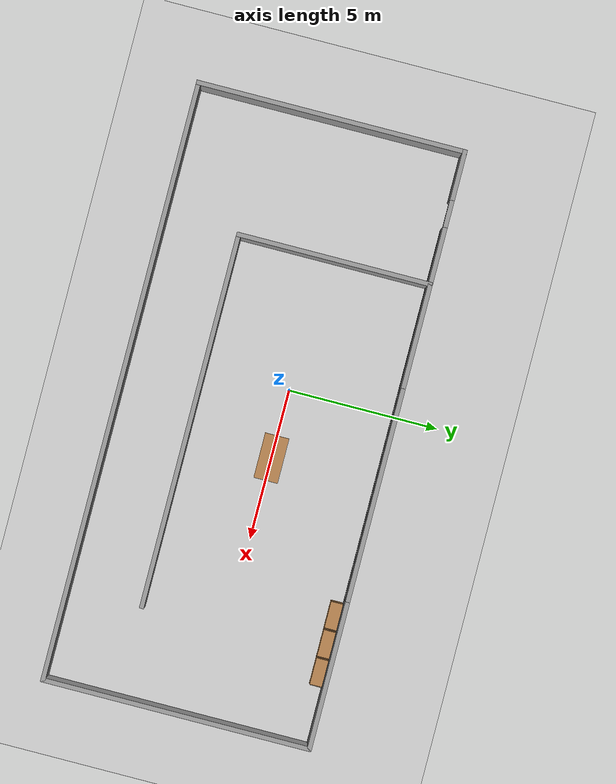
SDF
<sdf version="1.7">
 <world name="office">
  <light name="sun" type="directional">
   <pose>0 0 10 0 -0 0</pose>
   <diffuse>0.8 0.8 0.8 1</diffuse>
   <specular>0.2 0.2 0.2 1</specular>
   <attenuation>
    <range>1000</range>
    <constant>0.9</constant>
    <linear>0.01</linear>
    <quadratic>0.001</quadratic>
   </attenuation>
   <direction>-0.5 0.1 -0.9</direction>
   <spot><inner_angle>0</inner_angle><outer_angle>0</outer_angle><falloff>0</falloff></spot>
  </light>
  <model name="ground_plane">
   <static>1</static>
   <link name="link">
    <collision name="collision">
     <geometry><plane><normal>0 0 1</normal><size>100 100</size></plane></geometry>
     <surface><friction><ode><mu>100</mu><mu2>50</mu2></ode></friction></surface>
    </collision>
    <visual name="visual">
     <cast_shadows>0</cast_shadows>
     <geometry><plane><normal>0 0 1</normal><size>100 100</size></plane></geometry>
     <material>
      <script><uri>file://media/materials/scripts/gazebo.material</uri><name>Gazebo/Grey</name></script>
     </material>
    </visual>
   </link>
  </model>
  <gravity>0 0 -9.8</gravity>
  <magnetic_field>6e-06 2.3e-05 -4.2e-05</magnetic_field>
  <atmosphere type="adiabatic"/>
  <physics type="ode">
   <max_step_size>0.001</max_step_size>
   <real_time_factor>1</real_time_factor>
   <real_time_update_rate>1000</real_time_update_rate>
  </physics>
  <scene><ambient>0.4 0.4 0.4 1</ambient><background>0.7 0.7 0.7 1</background><shadows>1</shadows></scene>
  <spherical_coordinates>
   <surface_model>EARTH_WGS84</surface_model>
   <latitude_deg>0</latitude_deg>
   <longitude_deg>0</longitude_deg>
   <elevation>0</elevation>
   <heading_deg>0</heading_deg>
  </spherical_coordinates>
  <model name="office2">
   <pose>1.0955 -0.88908 0 0 -0 0</pose>
   <link name="Wall_10">
    <collision name="Wall_10_Collision">
     <geometry><box><size>12.5 0.15 2.5</size></box></geometry>
     <pose>0 0 1.25 0 -0 0</pose>
    </collision>
    <visual name="Wall_10_Visual">
     <pose>0 0 1.25 0 -0 0</pose>
     <geometry><box><size>12.5 0.15 2.5</size></box></geometry>
     <material>
      <script><uri>file://media/materials/scripts/gazebo.material</uri><name>Gazebo/Grey</name></script>
      <ambient>1 1 1 1</ambient>
     </material>
     <meta><layer>0</layer></meta>
    </visual>
    <pose>0.657496 -1.94249 0 0 -0 0</pose>
   </link>
   <link name="Wall_4">
    <collision name="Wall_4_Collision">
     <geometry><box><size>9 0.15 2.5</size></box></geometry>
     <pose>0 0 1.25 0 -0 0</pose>
    </collision>
    <visual name="Wall_4_Visual">
     <pose>0 0 1.25 0 -0 0</pose>
     <geometry><box><size>9 0.15 2.5</size></box></geometry>
     <material>
      <script><uri>file://media/materials/scripts/gazebo.material</uri><name>Gazebo/Grey</name></script>
      <ambient>1 1 1 1</ambient>
     </material>
     <meta><layer>0</layer></meta>
    </visual>
    <pose>-9.925 0 0 0 -0 -1.5708</pose>
   </link>
   <link name="Wall_5">
    <collision name="Wall_5_Collision">
     <geometry><box><size>20 0.15 2.5</size></box></geometry>
     <pose>0 0 1.25 0 -0 0</pose>
    </collision>
    <visual name="Wall_5_Visual">
     <pose>0 0 1.25 0 -0 0</pose>
     <geometry><box><size>20 0.15 2.5</size></box></geometry>
     <material>
      <script><uri>file://media/materials/scripts/gazebo.material</uri><name>Gazebo/Grey</name></script>
      <ambient>1 1 1 1</ambient>
     </material>
     <meta><layer>0</layer></meta>
    </visual>
    <pose>-0 -4.425 0 0 -0 0</pose>
   </link>
   <link name="Wall_6">
    <collision name="Wall_6_Collision">
     <geometry><box><size>9 0.15 2.5</size></box></geometry>
     <pose>0 0 1.25 0 -0 0</pose>
    </collision>
    <visual name="Wall_6_Visual">
     <pose>0 0 1.25 0 -0 0</pose>
     <geometry><box><size>9 0.15 2.5</size></box></geometry>
     <material>
      <script><uri>file://media/materials/scripts/gazebo.material</uri><name>Gazebo/Grey</name></script>
      <ambient>1 1 1 1</ambient>
     </material>
     <meta><layer>0</layer></meta>
    </visual>
    <pose>9.925 0 0 0 -0 1.5708</pose>
   </link>
   <link name="Wall_7">
    <pose>-0 4.425 0 0 -0 3.14159</pose>
    <visual name="Wall_7_Visual_0">
     <pose>-7.52211 0 1.25 0 -0 0</pose>
     <geometry><box><size>4.95578 0.15 2.5</size></box></geometry>
     <material>
      <script><uri>file://media/materials/scripts/gazebo.material</uri><name>Gazebo/Grey</name></script>
      <ambient>1 1 1 1</ambient>
     </material>
     <meta><layer>0</layer></meta>
    </visual>
    <collision name="Wall_7_Collision_0">
     <geometry><box><size>4.95578 0.15 2.5</size></box></geometry>
     <pose>-7.52211 0 1.25 0 -0 0</pose>
    </collision>
    <visual name="Wall_7_Visual_1">
     <pose>9.15559 0 1.25 0 -0 0</pose>
     <geometry><box><size>1.68883 0.15 2.5</size></box></geometry>
     <material>
      <script><uri>file://media/materials/scripts/gazebo.material</uri><name>Gazebo/Grey</name></script>
      <ambient>1 1 1 1</ambient>
     </material>
     <meta><layer>0</layer></meta>
    </visual>
    <collision name="Wall_7_Collision_1">
     <geometry><box><size>1.68883 0.15 2.5</size></box></geometry>
     <pose>9.15559 0 1.25 0 -0 0</pose>
    </collision>
    <visual name="Wall_7_Visual_2">
     <pose>1.18348 0 0.25 0 -0 0</pose>
     <geometry><box><size>12.4554 0.15 0.5</size></box></geometry>
     <material>
      <script><uri>file://media/materials/scripts/gazebo.material</uri><name>Gazebo/Grey</name></script>
      <ambient>1 1 1 1</ambient>
     </material>
     <meta><layer>0</layer></meta>
    </visual>
    <collision name="Wall_7_Collision_2">
     <geometry><box><size>12.4554 0.15 0.5</size></box></geometry>
     <pose>1.18348 0 0.25 0 -0 0</pose>
    </collision>
    <visual name="Wall_7_Visual_3">
     <pose>4.73169 0 1.5 0 -0 0</pose>
     <geometry><box><size>5.35897 0.15 2</size></box></geometry>
     <material>
      <script><uri>file://media/materials/scripts/gazebo.material</uri><name>Gazebo/Grey</name></script>
      <ambient>1 1 1 1</ambient>
     </material>
     <meta><layer>0</layer></meta>
    </visual>
    <collision name="Wall_7_Collision_3">
     <geometry><box><size>5.35897 0.15 2</size></box></geometry>
     <pose>4.73169 0 1.5 0 -0 0</pose>
    </collision>
    <visual name="Wall_7_Visual_4">
     <pose>-1.49601 0 1.9 0 -0 0</pose>
     <geometry><box><size>7.09642 0.15 1.2</size></box></geometry>
     <material>
      <script><uri>file://media/materials/scripts/gazebo.material</uri><name>Gazebo/Grey</name></script>
      <ambient>1 1 1 1</ambient>
     </material>
     <meta><layer>0</layer></meta>
    </visual>
    <collision name="Wall_7_Collision_4">
     <geometry><box><size>7.09642 0.15 1.2</size></box></geometry>
     <pose>-1.49601 0 1.9 0 -0 0</pose>
    </collision>
    <visual name="Wall_7_Visual_5">
     <pose>7.86117 0 2.25 0 -0 0</pose>
     <geometry><box><size>0.9 0.15 0.5</size></box></geometry>
     <material>
      <script><uri>file://media/materials/scripts/gazebo.material</uri><name>Gazebo/Grey</name></script>
      <ambient>1 1 1 1</ambient>
     </material>
     <meta><layer>0</layer></meta>
    </visual>
    <collision name="Wall_7_Collision_5">
     <geometry><box><size>0.9 0.15 0.5</size></box></geometry>
     <pose>7.86117 0 2.25 0 -0 0</pose>
    </collision>
   </link>
   <link name="Wall_9">
    <collision name="Wall_9_Collision">
     <geometry><box><size>6.5 0.15 2.5</size></box></geometry>
     <pose>0 0 1.25 0 -0 0</pose>
    </collision>
    <visual name="Wall_9_Visual">
     <pose>0 0 1.25 0 -0 0</pose>
     <geometry><box><size>6.5 0.15 2.5</size></box></geometry>
     <material>
      <script><uri>file://media/materials/scripts/gazebo.material</uri><name>Gazebo/Grey</name></script>
      <ambient>1 1 1 1</ambient>
     </material>
     <meta><layer>0</layer></meta>
    </visual>
    <pose>-5.5175 1.23251 0 0 -0 -1.5708</pose>
   </link>
   <static>1</static>
  </model>
  <model name="table">
   <static>1</static>
   <link name="link">
    <collision name="surface">
     <pose>0 0 1 0 -0 0</pose>
     <geometry><box><size>1.5 0.8 0.03</size></box></geometry>
     <surface><friction><ode><mu>0.6</mu><mu2>0.6</mu2></ode></friction></surface>
    </collision>
    <visual name="visual1">
     <pose>0 0 1 0 -0 0</pose>
     <geometry><box><size>1.5 0.8 0.03</size></box></geometry>
     <material>
      <script><uri>file://media/materials/scripts/gazebo.material</uri><name>Gazebo/Wood</name></script>
     </material>
    </visual>
    <collision name="front_left_leg">
     <pose>0.68 0.38 0.5 0 -0 0</pose>
     <geometry><cylinder><radius>0.02</radius><length>1</length></cylinder></geometry>
    </collision>
    <visual name="front_left_leg">
     <pose>0.68 0.38 0.5 0 -0 0</pose>
     <geometry><cylinder><radius>0.02</radius><length>1</length></cylinder></geometry>
     <material>
      <script><uri>file://media/materials/scripts/gazebo.material</uri><name>Gazebo/Grey</name></script>
     </material>
    </visual>
    <collision name="front_right_leg">
     <pose>0.68 -0.38 0.5 0 -0 0</pose>
     <geometry><cylinder><radius>0.02</radius><length>1</length></cylinder></geometry>
    </collision>
    <visual name="front_right_leg">
     <pose>0.68 -0.38 0.5 0 -0 0</pose>
     <geometry><cylinder><radius>0.02</radius><length>1</length></cylinder></geometry>
     <material>
      <script><uri>file://media/materials/scripts/gazebo.material</uri><name>Gazebo/Grey</name></script>
     </material>
    </visual>
    <collision name="back_right_leg">
     <pose>-0.68 -0.38 0.5 0 -0 0</pose>
     <geometry><cylinder><radius>0.02</radius><length>1</length></cylinder></geometry>
    </collision>
    <visual name="back_right_leg">
     <pose>-0.68 -0.38 0.5 0 -0 0</pose>
     <geometry><cylinder><radius>0.02</radius><length>1</length></cylinder></geometry>
     <material>
      <script><uri>file://media/materials/scripts/gazebo.material</uri><name>Gazebo/Grey</name></script>
     </material>
    </visual>
    <collision name="back_left_leg">
     <pose>-0.68 0.38 0.5 0 -0 0</pose>
     <geometry><cylinder><radius>0.02</radius><length>1</length></cylinder></geometry>
    </collision>
    <visual name="back_left_leg">
     <pose>-0.68 0.38 0.5 0 -0 0</pose>
     <geometry><cylinder><radius>0.02</radius><length>1</length></cylinder></geometry>
     <material>
      <script><uri>file://media/materials/scripts/gazebo.material</uri><name>Gazebo/Grey</name></script>
     </material>
    </visual>
   </link>
   <pose>2.27163 0.002844 0 0 -0 0</pose>
  </model>
  <model name="bookshelf">
   <static>1</static>
   <link name="link">
    <inertial><mass>1</mass></inertial>
    <collision name="back">
     <pose>0 0.005 0.6 0 -0 0</pose>
     <geometry><box><size>0.9 0.01 1.2</size></box></geometry>
    </collision>
    <visual name="visual1">
     <pose>0 0.005 0.6 0 -0 0</pose>
     <geometry><box><size>0.9 0.01 1.2</size></box></geometry>
     <material>
      <script><uri>file://media/materials/scripts/gazebo.material</uri><name>Gazebo/Wood</name></script>
     </material>
    </visual>
    <collision name="left_side">
     <pose>0.45 -0.195 0.6 0 -0 0</pose>
     <geometry><box><size>0.02 0.4 1.2</size></box></geometry>
    </collision>
    <visual name="visual2">
     <pose>0.45 -0.195 0.6 0 -0 0</pose>
     <geometry><box><size>0.02 0.4 1.2</size></box></geometry>
     <material>
      <script><uri>file://media/materials/scripts/gazebo.material</uri><name>Gazebo/Wood</name></script>
     </material>
    </visual>
    <collision name="right_side">
     <pose>-0.45 -0.195 0.6 0 -0 0</pose>
     <geometry><box><size>0.02 0.4 1.2</size></box></geometry>
    </collision>
    <visual name="visual3">
     <pose>-0.45 -0.195 0.6 0 -0 0</pose>
     <geometry><box><size>0.02 0.4 1.2</size></box></geometry>
     <material>
      <script><uri>file://media/materials/scripts/gazebo.material</uri><name>Gazebo/Wood</name></script>
     </material>
    </visual>
    <collision name="bottom">
     <pose>0 -0.195 0.03 0 -0 0</pose>
     <geometry><box><size>0.88 0.4 0.06</size></box></geometry>
    </collision>
    <visual name="visual4">
     <pose>0 -0.195 0.03 0 -0 0</pose>
     <geometry><box><size>0.88 0.4 0.06</size></box></geometry>
     <material>
      <script><uri>file://media/materials/scripts/gazebo.material</uri><name>Gazebo/Wood</name></script>
     </material>
    </visual>
    <collision name="top">
     <pose>0 -0.195 1.19 0 -0 0</pose>
     <geometry><box><size>0.88 0.4 0.02</size></box></geometry>
    </collision>
    <visual name="visual5">
     <pose>0 -0.195 1.19 0 -0 0</pose>
     <geometry><box><size>0.88 0.4 0.02</size></box></geometry>
     <material>
      <script><uri>file://media/materials/scripts/gazebo.material</uri><name>Gazebo/Wood</name></script>
     </material>
    </visual>
    <collision name="low_shelf">
     <pose>0 -0.195 0.43 0 -0 0</pose>
     <geometry><box><size>0.88 0.4 0.02</size></box></geometry>
    </collision>
    <visual name="visual6">
     <pose>0 -0.195 0.43 0 -0 0</pose>
     <geometry><box><size>0.88 0.4 0.02</size></box></geometry>
     <material>
      <script><uri>file://media/materials/scripts/gazebo.material</uri><name>Gazebo/Wood</name></script>
     </material>
    </visual>
    <collision name="high_shelf">
     <pose>0 -0.195 0.8 0 -0 0</pose>
     <geometry><box><size>0.88 0.4 0.02</size></box></geometry>
    </collision>
    <visual name="visual7">
     <pose>0 -0.195 0.8 0 -0 0</pose>
     <geometry><box><size>0.88 0.4 0.02</size></box></geometry>
     <material>
      <script><uri>file://media/materials/scripts/gazebo.material</uri><name>Gazebo/Wood</name></script>
     </material>
    </visual>
   </link>
   <pose>6.71556 3.44266 0 0 -0 0</pose>
  </model>
  <model name="bookshelf_0">
   <static>1</static>
   <link name="link">
    <inertial><mass>1</mass></inertial>
    <collision name="back">
     <pose>0 0.005 0.6 0 -0 0</pose>
     <geometry><box><size>0.9 0.01 1.2</size></box></geometry>
    </collision>
    <visual name="visual1">
     <pose>0 0.005 0.6 0 -0 0</pose>
     <geometry><box><size>0.9 0.01 1.2</size></box></geometry>
     <material>
      <script><uri>file://media/materials/scripts/gazebo.material</uri><name>Gazebo/Wood</name></script>
     </material>
    </visual>
    <collision name="left_side">
     <pose>0.45 -0.195 0.6 0 -0 0</pose>
     <geometry><box><size>0.02 0.4 1.2</size></box></geometry>
    </collision>
    <visual name="visual2">
     <pose>0.45 -0.195 0.6 0 -0 0</pose>
     <geometry><box><size>0.02 0.4 1.2</size></box></geometry>
     <material>
      <script><uri>file://media/materials/scripts/gazebo.material</uri><name>Gazebo/Wood</name></script>
     </material>
    </visual>
    <collision name="right_side">
     <pose>-0.45 -0.195 0.6 0 -0 0</pose>
     <geometry><box><size>0.02 0.4 1.2</size></box></geometry>
    </collision>
    <visual name="visual3">
     <pose>-0.45 -0.195 0.6 0 -0 0</pose>
     <geometry><box><size>0.02 0.4 1.2</size></box></geometry>
     <material>
      <script><uri>file://media/materials/scripts/gazebo.material</uri><name>Gazebo/Wood</name></script>
     </material>
    </visual>
    <collision name="bottom">
     <pose>0 -0.195 0.03 0 -0 0</pose>
     <geometry><box><size>0.88 0.4 0.06</size></box></geometry>
    </collision>
    <visual name="visual4">
     <pose>0 -0.195 0.03 0 -0 0</pose>
     <geometry><box><size>0.88 0.4 0.06</size></box></geometry>
     <material>
      <script><uri>file://media/materials/scripts/gazebo.material</uri><name>Gazebo/Wood</name></script>
     </material>
    </visual>
    <collision name="top">
     <pose>0 -0.195 1.19 0 -0 0</pose>
     <geometry><box><size>0.88 0.4 0.02</size></box></geometry>
    </collision>
    <visual name="visual5">
     <pose>0 -0.195 1.19 0 -0 0</pose>
     <geometry><box><size>0.88 0.4 0.02</size></box></geometry>
     <material>
      <script><uri>file://media/materials/scripts/gazebo.material</uri><name>Gazebo/Wood</name></script>
     </material>
    </visual>
    <collision name="low_shelf">
     <pose>0 -0.195 0.43 0 -0 0</pose>
     <geometry><box><size>0.88 0.4 0.02</size></box></geometry>
    </collision>
    <visual name="visual6">
     <pose>0 -0.195 0.43 0 -0 0</pose>
     <geometry><box><size>0.88 0.4 0.02</size></box></geometry>
     <material>
      <script><uri>file://media/materials/scripts/gazebo.material</uri><name>Gazebo/Wood</name></script>
     </material>
    </visual>
    <collision name="high_shelf">
     <pose>0 -0.195 0.8 0 -0 0</pose>
     <geometry><box><size>0.88 0.4 0.02</size></box></geometry>
    </collision>
    <visual name="visual7">
     <pose>0 -0.195 0.8 0 -0 0</pose>
     <geometry><box><size>0.88 0.4 0.02</size></box></geometry>
     <material>
      <script><uri>file://media/materials/scripts/gazebo.material</uri><name>Gazebo/Wood</name></script>
     </material>
    </visual>
   </link>
   <pose>8.60461 3.44434 0 0 -0 0</pose>
  </model>
  <model name="bookshelf_1">
   <static>1</static>
   <link name="link">
    <inertial><mass>1</mass></inertial>
    <collision name="back">
     <pose>0 0.005 0.6 0 -0 0</pose>
     <geometry><box><size>0.9 0.01 1.2</size></box></geometry>
    </collision>
    <visual name="visual1">
     <pose>0 0.005 0.6 0 -0 0</pose>
     <geometry><box><size>0.9 0.01 1.2</size></box></geometry>
     <material>
      <script><uri>file://media/materials/scripts/gazebo.material</uri><name>Gazebo/Wood</name></script>
     </material>
    </visual>
    <collision name="left_side">
     <pose>0.45 -0.195 0.6 0 -0 0</pose>
     <geometry><box><size>0.02 0.4 1.2</size></box></geometry>
    </collision>
    <visual name="visual2">
     <pose>0.45 -0.195 0.6 0 -0 0</pose>
     <geometry><box><size>0.02 0.4 1.2</size></box></geometry>
     <material>
      <script><uri>file://media/materials/scripts/gazebo.material</uri><name>Gazebo/Wood</name></script>
     </material>
    </visual>
    <collision name="right_side">
     <pose>-0.45 -0.195 0.6 0 -0 0</pose>
     <geometry><box><size>0.02 0.4 1.2</size></box></geometry>
    </collision>
    <visual name="visual3">
     <pose>-0.45 -0.195 0.6 0 -0 0</pose>
     <geometry><box><size>0.02 0.4 1.2</size></box></geometry>
     <material>
      <script><uri>file://media/materials/scripts/gazebo.material</uri><name>Gazebo/Wood</name></script>
     </material>
    </visual>
    <collision name="bottom">
     <pose>0 -0.195 0.03 0 -0 0</pose>
     <geometry><box><size>0.88 0.4 0.06</size></box></geometry>
    </collision>
    <visual name="visual4">
     <pose>0 -0.195 0.03 0 -0 0</pose>
     <geometry><box><size>0.88 0.4 0.06</size></box></geometry>
     <material>
      <script><uri>file://media/materials/scripts/gazebo.material</uri><name>Gazebo/Wood</name></script>
     </material>
    </visual>
    <collision name="top">
     <pose>0 -0.195 1.19 0 -0 0</pose>
     <geometry><box><size>0.88 0.4 0.02</size></box></geometry>
    </collision>
    <visual name="visual5">
     <pose>0 -0.195 1.19 0 -0 0</pose>
     <geometry><box><size>0.88 0.4 0.02</size></box></geometry>
     <material>
      <script><uri>file://media/materials/scripts/gazebo.material</uri><name>Gazebo/Wood</name></script>
     </material>
    </visual>
    <collision name="low_shelf">
     <pose>0 -0.195 0.43 0 -0 0</pose>
     <geometry><box><size>0.88 0.4 0.02</size></box></geometry>
    </collision>
    <visual name="visual6">
     <pose>0 -0.195 0.43 0 -0 0</pose>
     <geometry><box><size>0.88 0.4 0.02</size></box></geometry>
     <material>
      <script><uri>file://media/materials/scripts/gazebo.material</uri><name>Gazebo/Wood</name></script>
     </material>
    </visual>
    <collision name="high_shelf">
     <pose>0 -0.195 0.8 0 -0 0</pose>
     <geometry><box><size>0.88 0.4 0.02</size></box></geometry>
    </collision>
    <visual name="visual7">
     <pose>0 -0.195 0.8 0 -0 0</pose>
     <geometry><box><size>0.88 0.4 0.02</size></box></geometry>
     <material>
      <script><uri>file://media/materials/scripts/gazebo.material</uri><name>Gazebo/Wood</name></script>
     </material>
    </visual>
   </link>
   <pose>7.66119 3.44434 0 0 -0 0</pose>
  </model>
 </world>
</sdf>
